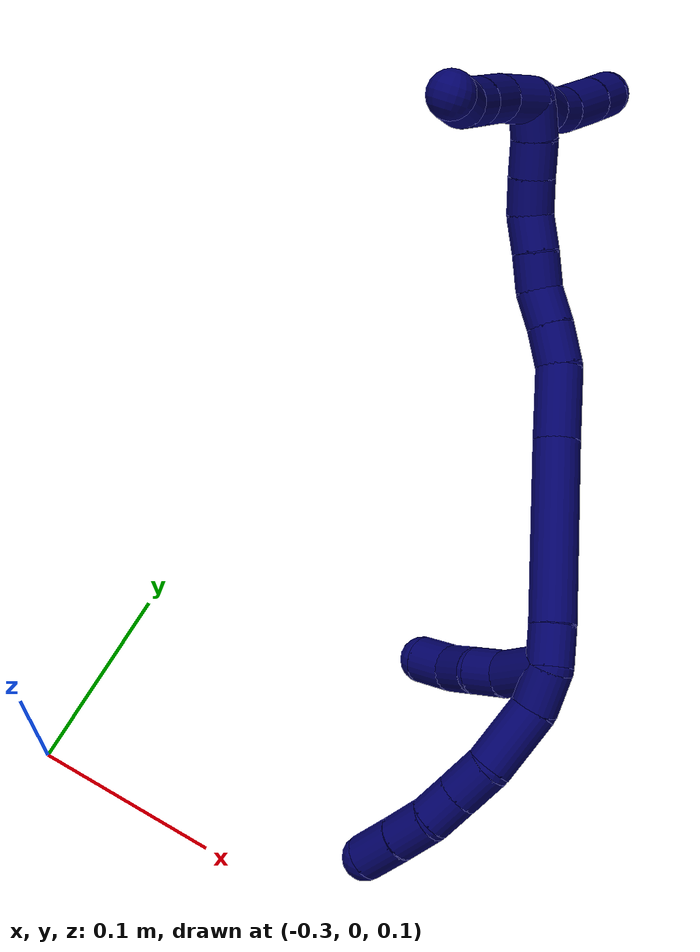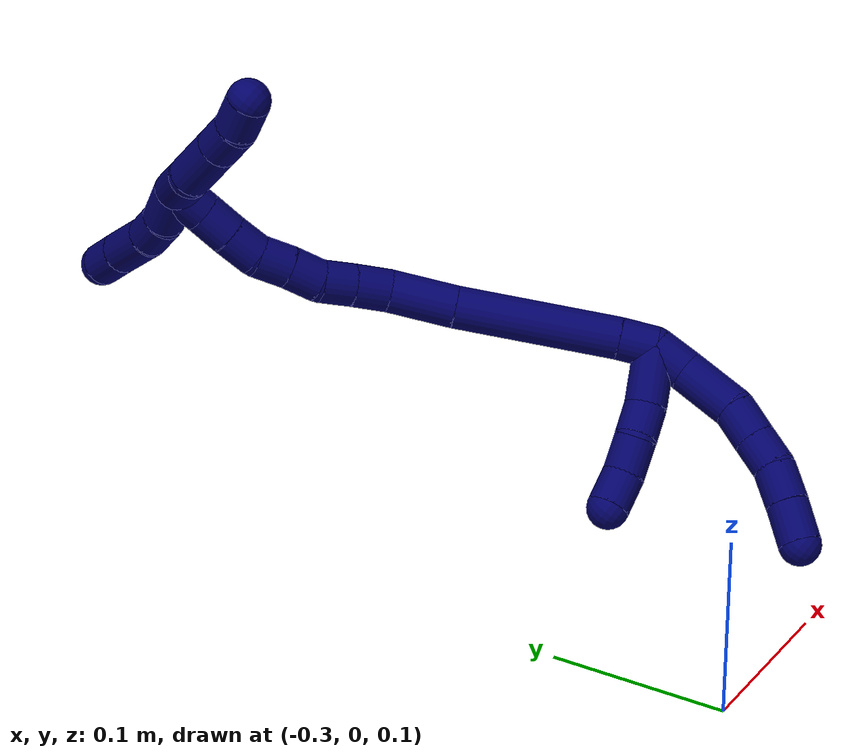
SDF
<sdf version="1.7">
 <world name="default">
  <model name="7">
   <static>0</static>
   <link name="7">
    <collision name="collision-cylinder-e_1_2_8">
     <pose>-0.000327 0.000509 -0.011384 -3.09692 -0.028673 1.14123</pose>
     <geometry><cylinder><radius>0.0125</radius><length>0.0228</length></cylinder></geometry>
     <surface>
      <friction><ode><mu>1.16</mu><mu2>1.16</mu2><slip1>0</slip1><slip2>0</slip2></ode></friction>
      <contact><ode><kp>1e+06</kp><kd>1</kd><max_vel>0</max_vel><min_depth>0.001</min_depth></ode></contact>
     </surface>
    </collision>
    <visual name="visual-cylinder-e_1_2_8">
     <pose>-0.000327 0.000509 -0.011384 -3.09692 -0.028673 1.14123</pose>
     <geometry><cylinder><radius>0.0125</radius><length>0.0228</length></cylinder></geometry>
     <material><ambient>0.003922 0 0.403922 1</ambient></material>
    </visual>
    <collision name="collision-cylinder-e_2_8_9">
     <pose>-0.001905 0.007893 -0.039992 -2.7618 -0.067354 0.347028</pose>
     <geometry><cylinder><radius>0.0125</radius><length>0.037176</length></cylinder></geometry>
     <surface>
      <friction><ode><mu>1.16</mu><mu2>1.16</mu2><slip1>0</slip1><slip2>0</slip2></ode></friction>
      <contact><ode><kp>1e+06</kp><kd>1</kd><max_vel>0</max_vel><min_depth>0.001</min_depth></ode></contact>
     </surface>
    </collision>
    <visual name="visual-cylinder-e_2_8_9">
     <pose>-0.001905 0.007893 -0.039992 -2.7618 -0.067354 0.347028</pose>
     <geometry><cylinder><radius>0.0125</radius><length>0.037176</length></cylinder></geometry>
     <material><ambient>0.003922 0 0.403922 1</ambient></material>
    </visual>
    <collision name="collision-cylinder-e_3_9_10">
     <pose>-0.000626 0.019313 -0.067153 -2.7127 0.22751 -0.966219</pose>
     <geometry><cylinder><radius>0.0125</radius><length>0.022432</length></cylinder></geometry>
     <surface>
      <friction><ode><mu>1.16</mu><mu2>1.16</mu2><slip1>0</slip1><slip2>0</slip2></ode></friction>
      <contact><ode><kp>1e+06</kp><kd>1</kd><max_vel>0</max_vel><min_depth>0.001</min_depth></ode></contact>
     </surface>
    </collision>
    <visual name="visual-cylinder-e_3_9_10">
     <pose>-0.000626 0.019313 -0.067153 -2.7127 0.22751 -0.966219</pose>
     <geometry><cylinder><radius>0.0125</radius><length>0.022432</length></cylinder></geometry>
     <material><ambient>0.003922 0 0.403922 1</ambient></material>
    </visual>
    <collision name="collision-cylinder-e_4_10_11">
     <pose>0.004033 0.028082 -0.086069 -2.70175 0.211352 -0.886109</pose>
     <geometry><cylinder><radius>0.0125</radius><length>0.020296</length></cylinder></geometry>
     <surface>
      <friction><ode><mu>1.16</mu><mu2>1.16</mu2><slip1>0</slip1><slip2>0</slip2></ode></friction>
      <contact><ode><kp>1e+06</kp><kd>1</kd><max_vel>0</max_vel><min_depth>0.001</min_depth></ode></contact>
     </surface>
    </collision>
    <visual name="visual-cylinder-e_4_10_11">
     <pose>0.004033 0.028082 -0.086069 -2.70175 0.211352 -0.886109</pose>
     <geometry><cylinder><radius>0.0125</radius><length>0.020296</length></cylinder></geometry>
     <material><ambient>0.003922 0 0.403922 1</ambient></material>
    </visual>
    <collision name="collision-cylinder-e_5_11_12">
     <pose>0.01117 0.037173 -0.104053 -2.64625 0.454997 -1.48267</pose>
     <geometry><cylinder><radius>0.0125</radius><length>0.022793</length></cylinder></geometry>
     <surface>
      <friction><ode><mu>1.16</mu><mu2>1.16</mu2><slip1>0</slip1><slip2>0</slip2></ode></friction>
      <contact><ode><kp>1e+06</kp><kd>1</kd><max_vel>0</max_vel><min_depth>0.001</min_depth></ode></contact>
     </surface>
    </collision>
    <visual name="visual-cylinder-e_5_11_12">
     <pose>0.01117 0.037173 -0.104053 -2.64625 0.454997 -1.48267</pose>
     <geometry><cylinder><radius>0.0125</radius><length>0.022793</length></cylinder></geometry>
     <material><ambient>0.003922 0 0.403922 1</ambient></material>
    </visual>
    <collision name="collision-cylinder-e_6_12_6">
     <pose>0.022069 0.047109 -0.122531 -2.65006 0.501601 -1.59194</pose>
     <geometry><cylinder><radius>0.0125</radius><length>0.024503</length></cylinder></geometry>
     <surface>
      <friction><ode><mu>1.16</mu><mu2>1.16</mu2><slip1>0</slip1><slip2>0</slip2></ode></friction>
      <contact><ode><kp>1e+06</kp><kd>1</kd><max_vel>0</max_vel><min_depth>0.001</min_depth></ode></contact>
     </surface>
    </collision>
    <visual name="visual-cylinder-e_6_12_6">
     <pose>0.022069 0.047109 -0.122531 -2.65006 0.501601 -1.59194</pose>
     <geometry><cylinder><radius>0.0125</radius><length>0.024503</length></cylinder></geometry>
     <material><ambient>0.003922 0 0.403922 1</ambient></material>
    </visual>
    <collision name="collision-cylinder-e_1_2_13">
     <pose>0.014332 0.005502 -0.008383 -2.56079 0.960337 -2.09973</pose>
     <geometry><cylinder><radius>0.0125</radius><length>0.034983</length></cylinder></geometry>
     <surface>
      <friction><ode><mu>1.16</mu><mu2>1.16</mu2><slip1>0</slip1><slip2>0</slip2></ode></friction>
      <contact><ode><kp>1e+06</kp><kd>1</kd><max_vel>0</max_vel><min_depth>0.001</min_depth></ode></contact>
     </surface>
    </collision>
    <visual name="visual-cylinder-e_1_2_13">
     <pose>0.014332 0.005502 -0.008383 -2.56079 0.960337 -2.09973</pose>
     <geometry><cylinder><radius>0.0125</radius><length>0.034983</length></cylinder></geometry>
     <material><ambient>0.003922 0 0.403922 1</ambient></material>
    </visual>
    <collision name="collision-cylinder-e_2_13_14">
     <pose>0.036713 0.016329 -0.020098 -2.12993 0.907972 -1.44443</pose>
     <geometry><cylinder><radius>0.0125</radius><length>0.02042</length></cylinder></geometry>
     <surface>
      <friction><ode><mu>1.16</mu><mu2>1.16</mu2><slip1>0</slip1><slip2>0</slip2></ode></friction>
      <contact><ode><kp>1e+06</kp><kd>1</kd><max_vel>0</max_vel><min_depth>0.001</min_depth></ode></contact>
     </surface>
    </collision>
    <visual name="visual-cylinder-e_2_13_14">
     <pose>0.036713 0.016329 -0.020098 -2.12993 0.907972 -1.44443</pose>
     <geometry><cylinder><radius>0.0125</radius><length>0.02042</length></cylinder></geometry>
     <material><ambient>0.003922 0 0.403922 1</ambient></material>
    </visual>
    <collision name="collision-cylinder-e_3_14_15">
     <pose>0.054821 0.02468 -0.027176 -2.46222 1.12452 -2.11935</pose>
     <geometry><cylinder><radius>0.0125</radius><length>0.022305</length></cylinder></geometry>
     <surface>
      <friction><ode><mu>1.16</mu><mu2>1.16</mu2><slip1>0</slip1><slip2>0</slip2></ode></friction>
      <contact><ode><kp>1e+06</kp><kd>1</kd><max_vel>0</max_vel><min_depth>0.001</min_depth></ode></contact>
     </surface>
    </collision>
    <visual name="visual-cylinder-e_3_14_15">
     <pose>0.054821 0.02468 -0.027176 -2.46222 1.12452 -2.11935</pose>
     <geometry><cylinder><radius>0.0125</radius><length>0.022305</length></cylinder></geometry>
     <material><ambient>0.003922 0 0.403922 1</ambient></material>
    </visual>
    <collision name="collision-cylinder-e_4_15_5">
     <pose>0.074034 0.03366 -0.033158 -1.93014 0.963337 -1.29309</pose>
     <geometry><cylinder><radius>0.0125</radius><length>0.022291</length></cylinder></geometry>
     <surface>
      <friction><ode><mu>1.16</mu><mu2>1.16</mu2><slip1>0</slip1><slip2>0</slip2></ode></friction>
      <contact><ode><kp>1e+06</kp><kd>1</kd><max_vel>0</max_vel><min_depth>0.001</min_depth></ode></contact>
     </surface>
    </collision>
    <visual name="visual-cylinder-e_4_15_5">
     <pose>0.074034 0.03366 -0.033158 -1.93014 0.963337 -1.29309</pose>
     <geometry><cylinder><radius>0.0125</radius><length>0.022291</length></cylinder></geometry>
     <material><ambient>0.003922 0 0.403922 1</ambient></material>
    </visual>
    <collision name="collision-cylinder-e_1_2_16">
     <pose>0.004214 0.001389 0.009928 -0.138997 0.397938 -0.02807</pose>
     <geometry><cylinder><radius>0.0125</radius><length>0.021748</length></cylinder></geometry>
     <surface>
      <friction><ode><mu>1.16</mu><mu2>1.16</mu2><slip1>0</slip1><slip2>0</slip2></ode></friction>
      <contact><ode><kp>1e+06</kp><kd>1</kd><max_vel>0</max_vel><min_depth>0.001</min_depth></ode></contact>
     </surface>
    </collision>
    <visual name="visual-cylinder-e_1_2_16">
     <pose>0.004214 0.001389 0.009928 -0.138997 0.397938 -0.02807</pose>
     <geometry><cylinder><radius>0.0125</radius><length>0.021748</length></cylinder></geometry>
     <material><ambient>0.003922 0 0.403922 1</ambient></material>
    </visual>
    <collision name="collision-cylinder-e_2_16_17">
     <pose>0.029532 0.01041 0.062575 -0.176797 0.452641 -0.040811</pose>
     <geometry><cylinder><radius>0.0125</radius><length>0.096512</length></cylinder></geometry>
     <surface>
      <friction><ode><mu>1.16</mu><mu2>1.16</mu2><slip1>0</slip1><slip2>0</slip2></ode></friction>
      <contact><ode><kp>1e+06</kp><kd>1</kd><max_vel>0</max_vel><min_depth>0.001</min_depth></ode></contact>
     </surface>
    </collision>
    <visual name="visual-cylinder-e_2_16_17">
     <pose>0.029532 0.01041 0.062575 -0.176797 0.452641 -0.040811</pose>
     <geometry><cylinder><radius>0.0125</radius><length>0.096512</length></cylinder></geometry>
     <material><ambient>0.003922 0 0.403922 1</ambient></material>
    </visual>
    <collision name="collision-cylinder-e_3_17_18">
     <pose>0.058319 0.021283 0.123159 -0.179423 0.40031 -0.036494</pose>
     <geometry><cylinder><radius>0.0125</radius><length>0.039429</length></cylinder></geometry>
     <surface>
      <friction><ode><mu>1.16</mu><mu2>1.16</mu2><slip1>0</slip1><slip2>0</slip2></ode></friction>
      <contact><ode><kp>1e+06</kp><kd>1</kd><max_vel>0</max_vel><min_depth>0.001</min_depth></ode></contact>
     </surface>
    </collision>
    <visual name="visual-cylinder-e_3_17_18">
     <pose>0.058319 0.021283 0.123159 -0.179423 0.40031 -0.036494</pose>
     <geometry><cylinder><radius>0.0125</radius><length>0.039429</length></cylinder></geometry>
     <material><ambient>0.003922 0 0.403922 1</ambient></material>
    </visual>
    <collision name="collision-cylinder-e_4_18_19">
     <pose>0.070439 0.028923 0.150154 -0.44913 0.412672 -0.09555</pose>
     <geometry><cylinder><radius>0.0125</radius><length>0.022128</length></cylinder></geometry>
     <surface>
      <friction><ode><mu>1.16</mu><mu2>1.16</mu2><slip1>0</slip1><slip2>0</slip2></ode></friction>
      <contact><ode><kp>1e+06</kp><kd>1</kd><max_vel>0</max_vel><min_depth>0.001</min_depth></ode></contact>
     </surface>
    </collision>
    <visual name="visual-cylinder-e_4_18_19">
     <pose>0.070439 0.028923 0.150154 -0.44913 0.412672 -0.09555</pose>
     <geometry><cylinder><radius>0.0125</radius><length>0.022128</length></cylinder></geometry>
     <material><ambient>0.003922 0 0.403922 1</ambient></material>
    </visual>
    <collision name="collision-cylinder-e_5_19_20">
     <pose>0.078873 0.038108 0.167176 -0.544922 0.408699 -0.115682</pose>
     <geometry><cylinder><radius>0.0125</radius><length>0.020114</length></cylinder></geometry>
     <surface>
      <friction><ode><mu>1.16</mu><mu2>1.16</mu2><slip1>0</slip1><slip2>0</slip2></ode></friction>
      <contact><ode><kp>1e+06</kp><kd>1</kd><max_vel>0</max_vel><min_depth>0.001</min_depth></ode></contact>
     </surface>
    </collision>
    <visual name="visual-cylinder-e_5_19_20">
     <pose>0.078873 0.038108 0.167176 -0.544922 0.408699 -0.115682</pose>
     <geometry><cylinder><radius>0.0125</radius><length>0.020114</length></cylinder></geometry>
     <material><ambient>0.003922 0 0.403922 1</ambient></material>
    </visual>
    <collision name="collision-cylinder-e_6_20_21">
     <pose>0.084397 0.046664 0.184237 -0.390339 0.152813 -0.030266</pose>
     <geometry><cylinder><radius>0.0125</radius><length>0.020064</length></cylinder></geometry>
     <surface>
      <friction><ode><mu>1.16</mu><mu2>1.16</mu2><slip1>0</slip1><slip2>0</slip2></ode></friction>
      <contact><ode><kp>1e+06</kp><kd>1</kd><max_vel>0</max_vel><min_depth>0.001</min_depth></ode></contact>
     </surface>
    </collision>
    <visual name="visual-cylinder-e_6_20_21">
     <pose>0.084397 0.046664 0.184237 -0.390339 0.152813 -0.030266</pose>
     <geometry><cylinder><radius>0.0125</radius><length>0.020064</length></cylinder></geometry>
     <material><ambient>0.003922 0 0.403922 1</ambient></material>
    </visual>
    <collision name="collision-cylinder-e_7_21_22">
     <pose>0.08819 0.054469 0.202274 -0.426797 0.228549 -0.049733</pose>
     <geometry><cylinder><radius>0.0125</radius><length>0.020003</length></cylinder></geometry>
     <surface>
      <friction><ode><mu>1.16</mu><mu2>1.16</mu2><slip1>0</slip1><slip2>0</slip2></ode></friction>
      <contact><ode><kp>1e+06</kp><kd>1</kd><max_vel>0</max_vel><min_depth>0.001</min_depth></ode></contact>
     </surface>
    </collision>
    <visual name="visual-cylinder-e_7_21_22">
     <pose>0.08819 0.054469 0.202274 -0.426797 0.228549 -0.049733</pose>
     <geometry><cylinder><radius>0.0125</radius><length>0.020003</length></cylinder></geometry>
     <material><ambient>0.003922 0 0.403922 1</ambient></material>
    </visual>
    <collision name="collision-cylinder-e_8_22_23">
     <pose>0.089877 0.061448 0.22068 -0.299567 -0.057911 0.008742</pose>
     <geometry><cylinder><radius>0.0125</radius><length>0.020001</length></cylinder></geometry>
     <surface>
      <friction><ode><mu>1.16</mu><mu2>1.16</mu2><slip1>0</slip1><slip2>0</slip2></ode></friction>
      <contact><ode><kp>1e+06</kp><kd>1</kd><max_vel>0</max_vel><min_depth>0.001</min_depth></ode></contact>
     </surface>
    </collision>
    <visual name="visual-cylinder-e_8_22_23">
     <pose>0.089877 0.061448 0.22068 -0.299567 -0.057911 0.008742</pose>
     <geometry><cylinder><radius>0.0125</radius><length>0.020001</length></cylinder></geometry>
     <material><ambient>0.003922 0 0.403922 1</ambient></material>
    </visual>
    <collision name="collision-cylinder-e_9_23_24">
     <pose>0.088342 0.0671 0.239799 -0.275266 -0.095795 0.013278</pose>
     <geometry><cylinder><radius>0.0125</radius><length>0.020001</length></cylinder></geometry>
     <surface>
      <friction><ode><mu>1.16</mu><mu2>1.16</mu2><slip1>0</slip1><slip2>0</slip2></ode></friction>
      <contact><ode><kp>1e+06</kp><kd>1</kd><max_vel>0</max_vel><min_depth>0.001</min_depth></ode></contact>
     </surface>
    </collision>
    <visual name="visual-cylinder-e_9_23_24">
     <pose>0.088342 0.0671 0.239799 -0.275266 -0.095795 0.013278</pose>
     <geometry><cylinder><radius>0.0125</radius><length>0.020001</length></cylinder></geometry>
     <material><ambient>0.003922 0 0.403922 1</ambient></material>
    </visual>
    <collision name="collision-cylinder-e_10_24_1">
     <pose>0.086425 0.073968 0.258421 -0.431437 -0.096224 0.021101</pose>
     <geometry><cylinder><radius>0.0125</radius><length>0.020001</length></cylinder></geometry>
     <surface>
      <friction><ode><mu>1.16</mu><mu2>1.16</mu2><slip1>0</slip1><slip2>0</slip2></ode></friction>
      <contact><ode><kp>1e+06</kp><kd>1</kd><max_vel>0</max_vel><min_depth>0.001</min_depth></ode></contact>
     </surface>
    </collision>
    <visual name="visual-cylinder-e_10_24_1">
     <pose>0.086425 0.073968 0.258421 -0.431437 -0.096224 0.021101</pose>
     <geometry><cylinder><radius>0.0125</radius><length>0.020001</length></cylinder></geometry>
     <material><ambient>0.003922 0 0.403922 1</ambient></material>
    </visual>
    <collision name="collision-cylinder-e_1_1_25">
     <pose>0.077547 0.088445 0.265259 -1.78138 -0.643906 0.782283</pose>
     <geometry><cylinder><radius>0.0125</radius><length>0.026375</length></cylinder></geometry>
     <surface>
      <friction><ode><mu>1.16</mu><mu2>1.16</mu2><slip1>0</slip1><slip2>0</slip2></ode></friction>
      <contact><ode><kp>1e+06</kp><kd>1</kd><max_vel>0</max_vel><min_depth>0.001</min_depth></ode></contact>
     </surface>
    </collision>
    <visual name="visual-cylinder-e_1_1_25">
     <pose>0.077547 0.088445 0.265259 -1.78138 -0.643906 0.782283</pose>
     <geometry><cylinder><radius>0.0125</radius><length>0.026375</length></cylinder></geometry>
     <material><ambient>0.003922 0 0.403922 1</ambient></material>
    </visual>
    <collision name="collision-cylinder-e_2_25_26">
     <pose>0.05625 0.107249 0.260503 -1.86265 -0.985635 1.25076</pose>
     <geometry><cylinder><radius>0.0125</radius><length>0.032101</length></cylinder></geometry>
     <surface>
      <friction><ode><mu>1.16</mu><mu2>1.16</mu2><slip1>0</slip1><slip2>0</slip2></ode></friction>
      <contact><ode><kp>1e+06</kp><kd>1</kd><max_vel>0</max_vel><min_depth>0.001</min_depth></ode></contact>
     </surface>
    </collision>
    <visual name="visual-cylinder-e_2_25_26">
     <pose>0.05625 0.107249 0.260503 -1.86265 -0.985635 1.25076</pose>
     <geometry><cylinder><radius>0.0125</radius><length>0.032101</length></cylinder></geometry>
     <material><ambient>0.003922 0 0.403922 1</ambient></material>
    </visual>
    <collision name="collision-cylinder-e_3_26_27">
     <pose>0.034393 0.121237 0.256369 -1.85124 -0.977124 1.22982</pose>
     <geometry><cylinder><radius>0.0125</radius><length>0.020454</length></cylinder></geometry>
     <surface>
      <friction><ode><mu>1.16</mu><mu2>1.16</mu2><slip1>0</slip1><slip2>0</slip2></ode></friction>
      <contact><ode><kp>1e+06</kp><kd>1</kd><max_vel>0</max_vel><min_depth>0.001</min_depth></ode></contact>
     </surface>
    </collision>
    <visual name="visual-cylinder-e_3_26_27">
     <pose>0.034393 0.121237 0.256369 -1.85124 -0.977124 1.22982</pose>
     <geometry><cylinder><radius>0.0125</radius><length>0.020454</length></cylinder></geometry>
     <material><ambient>0.003922 0 0.403922 1</ambient></material>
    </visual>
    <collision name="collision-cylinder-e_4_27_4">
     <pose>0.016742 0.131806 0.255827 -1.36824 -1.05697 0.888782</pose>
     <geometry><cylinder><radius>0.0125</radius><length>0.02107</length></cylinder></geometry>
     <surface>
      <friction><ode><mu>1.16</mu><mu2>1.16</mu2><slip1>0</slip1><slip2>0</slip2></ode></friction>
      <contact><ode><kp>1e+06</kp><kd>1</kd><max_vel>0</max_vel><min_depth>0.001</min_depth></ode></contact>
     </surface>
    </collision>
    <visual name="visual-cylinder-e_4_27_4">
     <pose>0.016742 0.131806 0.255827 -1.36824 -1.05697 0.888782</pose>
     <geometry><cylinder><radius>0.0125</radius><length>0.02107</length></cylinder></geometry>
     <material><ambient>0.003922 0 0.403922 1</ambient></material>
    </visual>
    <collision name="collision-cylinder-e_1_1_28">
     <pose>0.095985 0.070809 0.266331 1.72423 0.957277 1.08861</pose>
     <geometry><cylinder><radius>0.0125</radius><length>0.025735</length></cylinder></geometry>
     <surface>
      <friction><ode><mu>1.16</mu><mu2>1.16</mu2><slip1>0</slip1><slip2>0</slip2></ode></friction>
      <contact><ode><kp>1e+06</kp><kd>1</kd><max_vel>0</max_vel><min_depth>0.001</min_depth></ode></contact>
     </surface>
    </collision>
    <visual name="visual-cylinder-e_1_1_28">
     <pose>0.095985 0.070809 0.266331 1.72423 0.957277 1.08861</pose>
     <geometry><cylinder><radius>0.0125</radius><length>0.025735</length></cylinder></geometry>
     <material><ambient>0.003922 0 0.403922 1</ambient></material>
    </visual>
    <collision name="collision-cylinder-e_2_28_29">
     <pose>0.114652 0.057137 0.266711 1.33704 0.895224 0.724922</pose>
     <geometry><cylinder><radius>0.0125</radius><length>0.020879</length></cylinder></geometry>
     <surface>
      <friction><ode><mu>1.16</mu><mu2>1.16</mu2><slip1>0</slip1><slip2>0</slip2></ode></friction>
      <contact><ode><kp>1e+06</kp><kd>1</kd><max_vel>0</max_vel><min_depth>0.001</min_depth></ode></contact>
     </surface>
    </collision>
    <visual name="visual-cylinder-e_2_28_29">
     <pose>0.114652 0.057137 0.266711 1.33704 0.895224 0.724922</pose>
     <geometry><cylinder><radius>0.0125</radius><length>0.020879</length></cylinder></geometry>
     <material><ambient>0.003922 0 0.403922 1</ambient></material>
    </visual>
    <collision name="collision-cylinder-e_3_29_30">
     <pose>0.133967 0.041057 0.273054 1.10996 0.799248 0.512194</pose>
     <geometry><cylinder><radius>0.0125</radius><length>0.03116</length></cylinder></geometry>
     <surface>
      <friction><ode><mu>1.16</mu><mu2>1.16</mu2><slip1>0</slip1><slip2>0</slip2></ode></friction>
      <contact><ode><kp>1e+06</kp><kd>1</kd><max_vel>0</max_vel><min_depth>0.001</min_depth></ode></contact>
     </surface>
    </collision>
    <visual name="visual-cylinder-e_3_29_30">
     <pose>0.133967 0.041057 0.273054 1.10996 0.799248 0.512194</pose>
     <geometry><cylinder><radius>0.0125</radius><length>0.03116</length></cylinder></geometry>
     <material><ambient>0.003922 0 0.403922 1</ambient></material>
    </visual>
    <collision name="collision-cylinder-e_4_30_3">
     <pose>0.15342 0.024729 0.281252 1.09892 0.841279 0.534748</pose>
     <geometry><cylinder><radius>0.0125</radius><length>0.022226</length></cylinder></geometry>
     <surface>
      <friction><ode><mu>1.16</mu><mu2>1.16</mu2><slip1>0</slip1><slip2>0</slip2></ode></friction>
      <contact><ode><kp>1e+06</kp><kd>1</kd><max_vel>0</max_vel><min_depth>0.001</min_depth></ode></contact>
     </surface>
    </collision>
    <visual name="visual-cylinder-e_4_30_3">
     <pose>0.15342 0.024729 0.281252 1.09892 0.841279 0.534748</pose>
     <geometry><cylinder><radius>0.0125</radius><length>0.022226</length></cylinder></geometry>
     <material><ambient>0.003922 0 0.403922 1</ambient></material>
    </visual>
    <collision name="collision-sphere-3">
     <pose>0.161704 0.018132 0.284619 0 -0 0</pose>
     <geometry><sphere><radius>0.0125</radius></sphere></geometry>
     <surface>
      <friction><ode><mu>1.16</mu><mu2>1.16</mu2><slip1>0</slip1><slip2>0</slip2></ode></friction>
      <contact><ode><kp>1e+06</kp><kd>1</kd><max_vel>0</max_vel><min_depth>0.001</min_depth></ode></contact>
     </surface>
    </collision>
    <visual name="visual-sphere-3">
     <pose>0.161704 0.018132 0.284619 0 -0 0</pose>
     <geometry><sphere><radius>0.0125</radius></sphere></geometry>
     <material><ambient>0.003922 0 0.403922 1</ambient></material>
    </visual>
    <collision name="collision-sphere-30">
     <pose>0.145135 0.031327 0.277885 0 -0 0</pose>
     <geometry><sphere><radius>0.0125</radius></sphere></geometry>
     <surface>
      <friction><ode><mu>1.16</mu><mu2>1.16</mu2><slip1>0</slip1><slip2>0</slip2></ode></friction>
      <contact><ode><kp>1e+06</kp><kd>1</kd><max_vel>0</max_vel><min_depth>0.001</min_depth></ode></contact>
     </surface>
    </collision>
    <visual name="visual-sphere-30">
     <pose>0.145135 0.031327 0.277885 0 -0 0</pose>
     <geometry><sphere><radius>0.0125</radius></sphere></geometry>
     <material><ambient>0.003922 0 0.403922 1</ambient></material>
    </visual>
    <collision name="collision-sphere-29">
     <pose>0.122799 0.050787 0.268223 0 -0 0</pose>
     <geometry><sphere><radius>0.0125</radius></sphere></geometry>
     <surface>
      <friction><ode><mu>1.16</mu><mu2>1.16</mu2><slip1>0</slip1><slip2>0</slip2></ode></friction>
      <contact><ode><kp>1e+06</kp><kd>1</kd><max_vel>0</max_vel><min_depth>0.001</min_depth></ode></contact>
     </surface>
    </collision>
    <visual name="visual-sphere-29">
     <pose>0.122799 0.050787 0.268223 0 -0 0</pose>
     <geometry><sphere><radius>0.0125</radius></sphere></geometry>
     <material><ambient>0.003922 0 0.403922 1</ambient></material>
    </visual>
    <collision name="collision-sphere-28">
     <pose>0.106505 0.063488 0.265199 0 -0 0</pose>
     <geometry><sphere><radius>0.0125</radius></sphere></geometry>
     <surface>
      <friction><ode><mu>1.16</mu><mu2>1.16</mu2><slip1>0</slip1><slip2>0</slip2></ode></friction>
      <contact><ode><kp>1e+06</kp><kd>1</kd><max_vel>0</max_vel><min_depth>0.001</min_depth></ode></contact>
     </surface>
    </collision>
    <visual name="visual-sphere-28">
     <pose>0.106505 0.063488 0.265199 0 -0 0</pose>
     <geometry><sphere><radius>0.0125</radius></sphere></geometry>
     <material><ambient>0.003922 0 0.403922 1</ambient></material>
    </visual>
    <collision name="collision-sphere-4">
     <pose>0.007567 0.136879 0.256869 0 -0 0</pose>
     <geometry><sphere><radius>0.0125</radius></sphere></geometry>
     <surface>
      <friction><ode><mu>1.16</mu><mu2>1.16</mu2><slip1>0</slip1><slip2>0</slip2></ode></friction>
      <contact><ode><kp>1e+06</kp><kd>1</kd><max_vel>0</max_vel><min_depth>0.001</min_depth></ode></contact>
     </surface>
    </collision>
    <visual name="visual-sphere-4">
     <pose>0.007567 0.136879 0.256869 0 -0 0</pose>
     <geometry><sphere><radius>0.0125</radius></sphere></geometry>
     <material><ambient>0.003922 0 0.403922 1</ambient></material>
    </visual>
    <collision name="collision-sphere-27">
     <pose>0.025916 0.126734 0.254786 0 -0 0</pose>
     <geometry><sphere><radius>0.0125</radius></sphere></geometry>
     <surface>
      <friction><ode><mu>1.16</mu><mu2>1.16</mu2><slip1>0</slip1><slip2>0</slip2></ode></friction>
      <contact><ode><kp>1e+06</kp><kd>1</kd><max_vel>0</max_vel><min_depth>0.001</min_depth></ode></contact>
     </surface>
    </collision>
    <visual name="visual-sphere-27">
     <pose>0.025916 0.126734 0.254786 0 -0 0</pose>
     <geometry><sphere><radius>0.0125</radius></sphere></geometry>
     <material><ambient>0.003922 0 0.403922 1</ambient></material>
    </visual>
    <collision name="collision-sphere-26">
     <pose>0.04287 0.115739 0.257953 0 -0 0</pose>
     <geometry><sphere><radius>0.0125</radius></sphere></geometry>
     <surface>
      <friction><ode><mu>1.16</mu><mu2>1.16</mu2><slip1>0</slip1><slip2>0</slip2></ode></friction>
      <contact><ode><kp>1e+06</kp><kd>1</kd><max_vel>0</max_vel><min_depth>0.001</min_depth></ode></contact>
     </surface>
    </collision>
    <visual name="visual-sphere-26">
     <pose>0.04287 0.115739 0.257953 0 -0 0</pose>
     <geometry><sphere><radius>0.0125</radius></sphere></geometry>
     <material><ambient>0.003922 0 0.403922 1</ambient></material>
    </visual>
    <collision name="collision-sphere-25">
     <pose>0.06963 0.098759 0.263054 0 -0 0</pose>
     <geometry><sphere><radius>0.0125</radius></sphere></geometry>
     <surface>
      <friction><ode><mu>1.16</mu><mu2>1.16</mu2><slip1>0</slip1><slip2>0</slip2></ode></friction>
      <contact><ode><kp>1e+06</kp><kd>1</kd><max_vel>0</max_vel><min_depth>0.001</min_depth></ode></contact>
     </surface>
    </collision>
    <visual name="visual-sphere-25">
     <pose>0.06963 0.098759 0.263054 0 -0 0</pose>
     <geometry><sphere><radius>0.0125</radius></sphere></geometry>
     <material><ambient>0.003922 0 0.403922 1</ambient></material>
    </visual>
    <collision name="collision-sphere-1">
     <pose>0.085464 0.078131 0.267463 0 -0 0</pose>
     <geometry><sphere><radius>0.0125</radius></sphere></geometry>
     <surface>
      <friction><ode><mu>1.16</mu><mu2>1.16</mu2><slip1>0</slip1><slip2>0</slip2></ode></friction>
      <contact><ode><kp>1e+06</kp><kd>1</kd><max_vel>0</max_vel><min_depth>0.001</min_depth></ode></contact>
     </surface>
    </collision>
    <visual name="visual-sphere-1">
     <pose>0.085464 0.078131 0.267463 0 -0 0</pose>
     <geometry><sphere><radius>0.0125</radius></sphere></geometry>
     <material><ambient>0.003922 0 0.403922 1</ambient></material>
    </visual>
    <collision name="collision-sphere-24">
     <pose>0.087386 0.069805 0.249379 0 -0 0</pose>
     <geometry><sphere><radius>0.0125</radius></sphere></geometry>
     <surface>
      <friction><ode><mu>1.16</mu><mu2>1.16</mu2><slip1>0</slip1><slip2>0</slip2></ode></friction>
      <contact><ode><kp>1e+06</kp><kd>1</kd><max_vel>0</max_vel><min_depth>0.001</min_depth></ode></contact>
     </surface>
    </collision>
    <visual name="visual-sphere-24">
     <pose>0.087386 0.069805 0.249379 0 -0 0</pose>
     <geometry><sphere><radius>0.0125</radius></sphere></geometry>
     <material><ambient>0.003922 0 0.403922 1</ambient></material>
    </visual>
    <collision name="collision-sphere-23">
     <pose>0.089299 0.064394 0.230219 0 -0 0</pose>
     <geometry><sphere><radius>0.0125</radius></sphere></geometry>
     <surface>
      <friction><ode><mu>1.16</mu><mu2>1.16</mu2><slip1>0</slip1><slip2>0</slip2></ode></friction>
      <contact><ode><kp>1e+06</kp><kd>1</kd><max_vel>0</max_vel><min_depth>0.001</min_depth></ode></contact>
     </surface>
    </collision>
    <visual name="visual-sphere-23">
     <pose>0.089299 0.064394 0.230219 0 -0 0</pose>
     <geometry><sphere><radius>0.0125</radius></sphere></geometry>
     <material><ambient>0.003922 0 0.403922 1</ambient></material>
    </visual>
    <collision name="collision-sphere-22">
     <pose>0.090456 0.058502 0.211141 0 -0 0</pose>
     <geometry><sphere><radius>0.0125</radius></sphere></geometry>
     <surface>
      <friction><ode><mu>1.16</mu><mu2>1.16</mu2><slip1>0</slip1><slip2>0</slip2></ode></friction>
      <contact><ode><kp>1e+06</kp><kd>1</kd><max_vel>0</max_vel><min_depth>0.001</min_depth></ode></contact>
     </surface>
    </collision>
    <visual name="visual-sphere-22">
     <pose>0.090456 0.058502 0.211141 0 -0 0</pose>
     <geometry><sphere><radius>0.0125</radius></sphere></geometry>
     <material><ambient>0.003922 0 0.403922 1</ambient></material>
    </visual>
    <collision name="collision-sphere-21">
     <pose>0.085924 0.050437 0.193406 0 -0 0</pose>
     <geometry><sphere><radius>0.0125</radius></sphere></geometry>
     <surface>
      <friction><ode><mu>1.16</mu><mu2>1.16</mu2><slip1>0</slip1><slip2>0</slip2></ode></friction>
      <contact><ode><kp>1e+06</kp><kd>1</kd><max_vel>0</max_vel><min_depth>0.001</min_depth></ode></contact>
     </surface>
    </collision>
    <visual name="visual-sphere-21">
     <pose>0.085924 0.050437 0.193406 0 -0 0</pose>
     <geometry><sphere><radius>0.0125</radius></sphere></geometry>
     <material><ambient>0.003922 0 0.403922 1</ambient></material>
    </visual>
    <collision name="collision-sphere-12">
     <pose>0.016178 0.042039 -0.11306 0 -0 0</pose>
     <geometry><sphere><radius>0.0125</radius></sphere></geometry>
     <surface>
      <friction><ode><mu>1.16</mu><mu2>1.16</mu2><slip1>0</slip1><slip2>0</slip2></ode></friction>
      <contact><ode><kp>1e+06</kp><kd>1</kd><max_vel>0</max_vel><min_depth>0.001</min_depth></ode></contact>
     </surface>
    </collision>
    <visual name="visual-sphere-12">
     <pose>0.016178 0.042039 -0.11306 0 -0 0</pose>
     <geometry><sphere><radius>0.0125</radius></sphere></geometry>
     <material><ambient>0.003922 0 0.403922 1</ambient></material>
    </visual>
    <collision name="collision-sphere-11">
     <pose>0.006162 0.032306 -0.095047 0 -0 0</pose>
     <geometry><sphere><radius>0.0125</radius></sphere></geometry>
     <surface>
      <friction><ode><mu>1.16</mu><mu2>1.16</mu2><slip1>0</slip1><slip2>0</slip2></ode></friction>
      <contact><ode><kp>1e+06</kp><kd>1</kd><max_vel>0</max_vel><min_depth>0.001</min_depth></ode></contact>
     </surface>
    </collision>
    <visual name="visual-sphere-11">
     <pose>0.006162 0.032306 -0.095047 0 -0 0</pose>
     <geometry><sphere><radius>0.0125</radius></sphere></geometry>
     <material><ambient>0.003922 0 0.403922 1</ambient></material>
    </visual>
    <collision name="collision-sphere-10">
     <pose>0.001904 0.023857 -0.077091 0 -0 0</pose>
     <geometry><sphere><radius>0.0125</radius></sphere></geometry>
     <surface>
      <friction><ode><mu>1.16</mu><mu2>1.16</mu2><slip1>0</slip1><slip2>0</slip2></ode></friction>
      <contact><ode><kp>1e+06</kp><kd>1</kd><max_vel>0</max_vel><min_depth>0.001</min_depth></ode></contact>
     </surface>
    </collision>
    <visual name="visual-sphere-10">
     <pose>0.001904 0.023857 -0.077091 0 -0 0</pose>
     <geometry><sphere><radius>0.0125</radius></sphere></geometry>
     <material><ambient>0.003922 0 0.403922 1</ambient></material>
    </visual>
    <collision name="collision-sphere-9">
     <pose>-0.003156 0.014769 -0.057216 0 -0 0</pose>
     <geometry><sphere><radius>0.0125</radius></sphere></geometry>
     <surface>
      <friction><ode><mu>1.16</mu><mu2>1.16</mu2><slip1>0</slip1><slip2>0</slip2></ode></friction>
      <contact><ode><kp>1e+06</kp><kd>1</kd><max_vel>0</max_vel><min_depth>0.001</min_depth></ode></contact>
     </surface>
    </collision>
    <visual name="visual-sphere-9">
     <pose>-0.003156 0.014769 -0.057216 0 -0 0</pose>
     <geometry><sphere><radius>0.0125</radius></sphere></geometry>
     <material><ambient>0.003922 0 0.403922 1</ambient></material>
    </visual>
    <collision name="collision-sphere-2">
     <geometry><sphere><radius>0.0125</radius></sphere></geometry>
     <surface>
      <friction><ode><mu>1.16</mu><mu2>1.16</mu2><slip1>0</slip1><slip2>0</slip2></ode></friction>
      <contact><ode><kp>1e+06</kp><kd>1</kd><max_vel>0</max_vel><min_depth>0.001</min_depth></ode></contact>
     </surface>
    </collision>
    <visual name="visual-sphere-2">
     <geometry><sphere><radius>0.0125</radius></sphere></geometry>
     <material><ambient>0.003922 0 0.403922 1</ambient></material>
    </visual>
    <collision name="collision-sphere-19">
     <pose>0.074877 0.033324 0.159284 0 -0 0</pose>
     <geometry><sphere><radius>0.0125</radius></sphere></geometry>
     <surface>
      <friction><ode><mu>1.16</mu><mu2>1.16</mu2><slip1>0</slip1><slip2>0</slip2></ode></friction>
      <contact><ode><kp>1e+06</kp><kd>1</kd><max_vel>0</max_vel><min_depth>0.001</min_depth></ode></contact>
     </surface>
    </collision>
    <visual name="visual-sphere-19">
     <pose>0.074877 0.033324 0.159284 0 -0 0</pose>
     <geometry><sphere><radius>0.0125</radius></sphere></geometry>
     <material><ambient>0.003922 0 0.403922 1</ambient></material>
    </visual>
    <collision name="collision-sphere-8">
     <pose>-0.000654 0.001018 -0.022767 0 -0 0</pose>
     <geometry><sphere><radius>0.0125</radius></sphere></geometry>
     <surface>
      <friction><ode><mu>1.16</mu><mu2>1.16</mu2><slip1>0</slip1><slip2>0</slip2></ode></friction>
      <contact><ode><kp>1e+06</kp><kd>1</kd><max_vel>0</max_vel><min_depth>0.001</min_depth></ode></contact>
     </surface>
    </collision>
    <visual name="visual-sphere-8">
     <pose>-0.000654 0.001018 -0.022767 0 -0 0</pose>
     <geometry><sphere><radius>0.0125</radius></sphere></geometry>
     <material><ambient>0.003922 0 0.403922 1</ambient></material>
    </visual>
    <collision name="collision-sphere-6">
     <pose>0.02796 0.052179 -0.132001 0 -0 0</pose>
     <geometry><sphere><radius>0.0125</radius></sphere></geometry>
     <surface>
      <friction><ode><mu>1.16</mu><mu2>1.16</mu2><slip1>0</slip1><slip2>0</slip2></ode></friction>
      <contact><ode><kp>1e+06</kp><kd>1</kd><max_vel>0</max_vel><min_depth>0.001</min_depth></ode></contact>
     </surface>
    </collision>
    <visual name="visual-sphere-6">
     <pose>0.02796 0.052179 -0.132001 0 -0 0</pose>
     <geometry><sphere><radius>0.0125</radius></sphere></geometry>
     <material><ambient>0.003922 0 0.403922 1</ambient></material>
    </visual>
    <collision name="collision-sphere-13">
     <pose>0.028665 0.011003 -0.016765 0 -0 0</pose>
     <geometry><sphere><radius>0.0125</radius></sphere></geometry>
     <surface>
      <friction><ode><mu>1.16</mu><mu2>1.16</mu2><slip1>0</slip1><slip2>0</slip2></ode></friction>
      <contact><ode><kp>1e+06</kp><kd>1</kd><max_vel>0</max_vel><min_depth>0.001</min_depth></ode></contact>
     </surface>
    </collision>
    <visual name="visual-sphere-13">
     <pose>0.028665 0.011003 -0.016765 0 -0 0</pose>
     <geometry><sphere><radius>0.0125</radius></sphere></geometry>
     <material><ambient>0.003922 0 0.403922 1</ambient></material>
    </visual>
    <collision name="collision-sphere-14">
     <pose>0.044761 0.021655 -0.023431 0 -0 0</pose>
     <geometry><sphere><radius>0.0125</radius></sphere></geometry>
     <surface>
      <friction><ode><mu>1.16</mu><mu2>1.16</mu2><slip1>0</slip1><slip2>0</slip2></ode></friction>
      <contact><ode><kp>1e+06</kp><kd>1</kd><max_vel>0</max_vel><min_depth>0.001</min_depth></ode></contact>
     </surface>
    </collision>
    <visual name="visual-sphere-14">
     <pose>0.044761 0.021655 -0.023431 0 -0 0</pose>
     <geometry><sphere><radius>0.0125</radius></sphere></geometry>
     <material><ambient>0.003922 0 0.403922 1</ambient></material>
    </visual>
    <collision name="collision-sphere-15">
     <pose>0.064882 0.027704 -0.03092 0 -0 0</pose>
     <geometry><sphere><radius>0.0125</radius></sphere></geometry>
     <surface>
      <friction><ode><mu>1.16</mu><mu2>1.16</mu2><slip1>0</slip1><slip2>0</slip2></ode></friction>
      <contact><ode><kp>1e+06</kp><kd>1</kd><max_vel>0</max_vel><min_depth>0.001</min_depth></ode></contact>
     </surface>
    </collision>
    <visual name="visual-sphere-15">
     <pose>0.064882 0.027704 -0.03092 0 -0 0</pose>
     <geometry><sphere><radius>0.0125</radius></sphere></geometry>
     <material><ambient>0.003922 0 0.403922 1</ambient></material>
    </visual>
    <collision name="collision-sphere-5">
     <pose>0.083185 0.039615 -0.035395 0 -0 0</pose>
     <geometry><sphere><radius>0.0125</radius></sphere></geometry>
     <surface>
      <friction><ode><mu>1.16</mu><mu2>1.16</mu2><slip1>0</slip1><slip2>0</slip2></ode></friction>
      <contact><ode><kp>1e+06</kp><kd>1</kd><max_vel>0</max_vel><min_depth>0.001</min_depth></ode></contact>
     </surface>
    </collision>
    <visual name="visual-sphere-5">
     <pose>0.083185 0.039615 -0.035395 0 -0 0</pose>
     <geometry><sphere><radius>0.0125</radius></sphere></geometry>
     <material><ambient>0.003922 0 0.403922 1</ambient></material>
    </visual>
    <collision name="collision-sphere-16">
     <pose>0.008428 0.002778 0.019855 0 -0 0</pose>
     <geometry><sphere><radius>0.0125</radius></sphere></geometry>
     <surface>
      <friction><ode><mu>1.16</mu><mu2>1.16</mu2><slip1>0</slip1><slip2>0</slip2></ode></friction>
      <contact><ode><kp>1e+06</kp><kd>1</kd><max_vel>0</max_vel><min_depth>0.001</min_depth></ode></contact>
     </surface>
    </collision>
    <visual name="visual-sphere-16">
     <pose>0.008428 0.002778 0.019855 0 -0 0</pose>
     <geometry><sphere><radius>0.0125</radius></sphere></geometry>
     <material><ambient>0.003922 0 0.403922 1</ambient></material>
    </visual>
    <collision name="collision-sphere-17">
     <pose>0.050636 0.018043 0.105295 0 -0 0</pose>
     <geometry><sphere><radius>0.0125</radius></sphere></geometry>
     <surface>
      <friction><ode><mu>1.16</mu><mu2>1.16</mu2><slip1>0</slip1><slip2>0</slip2></ode></friction>
      <contact><ode><kp>1e+06</kp><kd>1</kd><max_vel>0</max_vel><min_depth>0.001</min_depth></ode></contact>
     </surface>
    </collision>
    <visual name="visual-sphere-17">
     <pose>0.050636 0.018043 0.105295 0 -0 0</pose>
     <geometry><sphere><radius>0.0125</radius></sphere></geometry>
     <material><ambient>0.003922 0 0.403922 1</ambient></material>
    </visual>
    <collision name="collision-sphere-18">
     <pose>0.066002 0.024523 0.141024 0 -0 0</pose>
     <geometry><sphere><radius>0.0125</radius></sphere></geometry>
     <surface>
      <friction><ode><mu>1.16</mu><mu2>1.16</mu2><slip1>0</slip1><slip2>0</slip2></ode></friction>
      <contact><ode><kp>1e+06</kp><kd>1</kd><max_vel>0</max_vel><min_depth>0.001</min_depth></ode></contact>
     </surface>
    </collision>
    <visual name="visual-sphere-18">
     <pose>0.066002 0.024523 0.141024 0 -0 0</pose>
     <geometry><sphere><radius>0.0125</radius></sphere></geometry>
     <material><ambient>0.003922 0 0.403922 1</ambient></material>
    </visual>
    <collision name="collision-sphere-20">
     <pose>0.08287 0.042891 0.175068 0 -0 0</pose>
     <geometry><sphere><radius>0.0125</radius></sphere></geometry>
     <surface>
      <friction><ode><mu>1.16</mu><mu2>1.16</mu2><slip1>0</slip1><slip2>0</slip2></ode></friction>
      <contact><ode><kp>1e+06</kp><kd>1</kd><max_vel>0</max_vel><min_depth>0.001</min_depth></ode></contact>
     </surface>
    </collision>
    <visual name="visual-sphere-20">
     <pose>0.08287 0.042891 0.175068 0 -0 0</pose>
     <geometry><sphere><radius>0.0125</radius></sphere></geometry>
     <material><ambient>0.003922 0 0.403922 1</ambient></material>
    </visual>
    <inertial>
     <pose>0.052535 0.040493 0.10756 0 -0 0</pose>
     <mass>0.75</mass>
     <inertia>
      <ixx>0.000116</ixx>
      <ixy>0</ixy>
      <ixz>0</ixz>
      <iyy>0.00012</iyy>
      <iyz>0</iyz>
      <izz>-6.8e-05</izz>
     </inertia>
    </inertial>
   </link>
   <pose>-0.085289 0.15428 0.177468 0.513992 0.902646 2.36298</pose>
  </model>
 </world>
</sdf>
